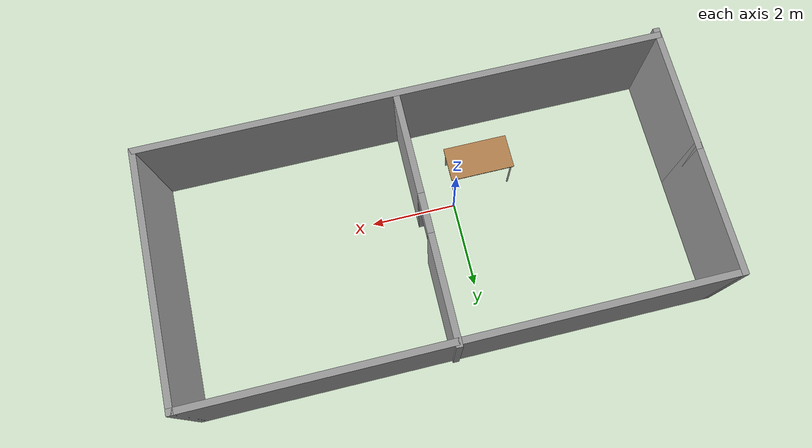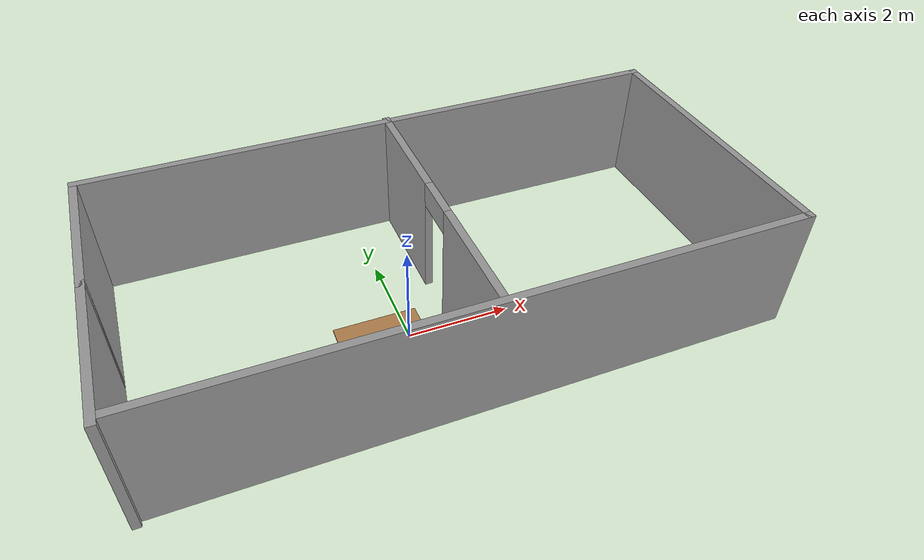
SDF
<?xml version='1.0'?>
<sdf version='1.7'>
    <world name="default">
        <model name='room1_with_table'>
            <model name='room1'>
            <pose>0.745551 0.708935 0 0 -0 0</pose>
            <link name='Wall_0'>
                <collision name='Wall_0_Collision'>
                <geometry>
                    <box>
                    <size>3 0.15 2.5</size>
                    </box>
                </geometry>
                <pose>0 0 1.25 0 -0 0</pose>
                </collision>
                <visual name='Wall_0_Visual'>
                <pose>0 0 1.25 0 -0 0</pose>
                <geometry>
                    <box>
                    <size>3 0.15 2.5</size>
                    </box>
                </geometry>
                <material>
                    <script>
                    <uri>file://media/materials/scripts/gazebo.material</uri>
                    <name>Gazebo/Grey</name>
                    </script>
                    <ambient>1 1 1 1</ambient>
                </material>
                <meta>
                    <layer>0</layer>
                </meta>
                </visual>
                <pose>-5.925 -1.4495 0 0 -0 -1.5708</pose>
            </link>
            <link name='Wall_3'>
                <collision name='Wall_3_Collision'>
                <geometry>
                    <box>
                    <size>3 0.15 2.5</size>
                    </box>
                </geometry>
                <pose>0 0 1.25 0 -0 0</pose>
                </collision>
                <visual name='Wall_3_Visual'>
                <pose>0 0 1.25 0 -0 0</pose>
                <geometry>
                    <box>
                    <size>3 0.15 2.5</size>
                    </box>
                </geometry>
                <material>
                    <script>
                    <uri>file://media/materials/scripts/gazebo.material</uri>
                    <name>Gazebo/Grey</name>
                    </script>
                    <ambient>1 1 1 1</ambient>
                </material>
                <meta>
                    <layer>0</layer>
                </meta>
                </visual>
                <pose>-5.925 1.4005 0 0 -0 1.5708</pose>
            </link>
            <link name='Wall_4'>
                <collision name='Wall_4_Collision'>
                <geometry>
                    <box>
                    <size>12 0.15 2.5</size>
                    </box>
                </geometry>
                <pose>0 0 1.25 0 -0 0</pose>
                </collision>
                <visual name='Wall_4_Visual'>
                <pose>0 0 1.25 0 -0 0</pose>
                <geometry>
                    <box>
                    <size>12 0.15 2.5</size>
                    </box>
                </geometry>
                <material>
                    <script>
                    <uri>file://media/materials/scripts/gazebo.material</uri>
                    <name>Gazebo/Grey</name>
                    </script>
                    <ambient>1 1 1 1</ambient>
                </material>
                <meta>
                    <layer>0</layer>
                </meta>
                </visual>
                <pose>-0 2.8255 0 0 -0 0</pose>
            </link>
            <link name='Wall_5'>
                <collision name='Wall_5_Collision'>
                <geometry>
                    <box>
                    <size>5.75 0.15 2.5</size>
                    </box>
                </geometry>
                <pose>0 0 1.25 0 -0 0</pose>
                </collision>
                <visual name='Wall_5_Visual'>
                <pose>0 0 1.25 0 -0 0</pose>
                <geometry>
                    <box>
                    <size>5.75 0.15 2.5</size>
                    </box>
                </geometry>
                <material>
                    <script>
                    <uri>file://media/materials/scripts/gazebo.material</uri>
                    <name>Gazebo/Grey</name>
                    </script>
                    <ambient>1 1 1 1</ambient>
                </material>
                <meta>
                    <layer>0</layer>
                </meta>
                </visual>
                <pose>5.925 0.0255 0 0 -0 -1.5708</pose>
            </link>
            <link name='Wall_6'>
                <collision name='Wall_6_Collision'>
                <geometry>
                    <box>
                    <size>12 0.15 2.5</size>
                    </box>
                </geometry>
                <pose>0 0 1.25 0 -0 0</pose>
                </collision>
                <visual name='Wall_6_Visual'>
                <pose>0 0 1.25 0 -0 0</pose>
                <geometry>
                    <box>
                    <size>12 0.15 2.5</size>
                    </box>
                </geometry>
                <material>
                    <script>
                    <uri>file://media/materials/scripts/gazebo.material</uri>
                    <name>Gazebo/Grey</name>
                    </script>
                    <ambient>1 1 1 1</ambient>
                </material>
                <meta>
                    <layer>0</layer>
                </meta>
                </visual>
                <pose>-0 -2.7745 0 0 -0 3.14159</pose>
            </link>
            <link name='Wall_9'>
                <pose>0.124261 0.0745 0 0 -0 1.5708</pose>
                <visual name='Wall_9_Visual_0'>
                <pose>-1.671 0 1.25 0 -0 0</pose>
                <geometry>
                    <box>
                    <size>2.408 0.15 2.5</size>
                    </box>
                </geometry>
                <material>
                    <script>
                    <uri>file://media/materials/scripts/gazebo.material</uri>
                    <name>Gazebo/Grey</name>
                    </script>
                    <ambient>1 1 1 1</ambient>
                </material>
                <meta>
                    <layer>0</layer>
                </meta>
                </visual>
                <collision name='Wall_9_Collision_0'>
                <geometry>
                    <box>
                    <size>2.408 0.15 2.5</size>
                    </box>
                </geometry>
                <pose>-1.671 0 1.25 0 -0 0</pose>
                </collision>
                <visual name='Wall_9_Visual_1'>
                <pose>1.654 0 1.25 0 -0 0</pose>
                <geometry>
                    <box>
                    <size>2.442 0.15 2.5</size>
                    </box>
                </geometry>
                <material>
                    <script>
                    <uri>file://media/materials/scripts/gazebo.material</uri>
                    <name>Gazebo/Grey</name>
                    </script>
                    <ambient>1 1 1 1</ambient>
                </material>
                <meta>
                    <layer>0</layer>
                </meta>
                </visual>
                <collision name='Wall_9_Collision_1'>
                <geometry>
                    <box>
                    <size>2.442 0.15 2.5</size>
                    </box>
                </geometry>
                <pose>1.654 0 1.25 0 -0 0</pose>
                </collision>
                <visual name='Wall_9_Visual_2'>
                <pose>-0.017 0 2.25 0 -0 0</pose>
                <geometry>
                    <box>
                    <size>0.9 0.15 0.5</size>
                    </box>
                </geometry>
                <material>
                    <script>
                    <uri>file://media/materials/scripts/gazebo.material</uri>
                    <name>Gazebo/Grey</name>
                    </script>
                    <ambient>1 1 1 1</ambient>
                </material>
                <meta>
                    <layer>0</layer>
                </meta>
                </visual>
                <collision name='Wall_9_Collision_2'>
                <geometry>
                    <box>
                    <size>0.9 0.15 0.5</size>
                    </box>
                </geometry>
                <pose>-0.017 0 2.25 0 -0 0</pose>
                </collision>
            </link>
            <static>1</static>
            </model>
            <model name='table'>
            <static>1</static>
            <link name='link'>
                <collision name='surface'>
                <pose>0 0 1 0 -0 0</pose>
                <geometry>
                    <box>
                    <size>1.5 0.8 0.03</size>
                    </box>
                </geometry>
                <surface>
                    <friction>
                    <ode>
                        <mu>0.6</mu>
                        <mu2>0.6</mu2>
                    </ode>
                    </friction>
                </surface>
                </collision>
                <visual name='visual1'>
                <pose>0 0 1 0 -0 0</pose>
                <geometry>
                    <box>
                    <size>1.5 0.8 0.03</size>
                    </box>
                </geometry>
                <material>
                    <script>
                    <uri>file://media/materials/scripts/gazebo.material</uri>
                    <name>Gazebo/Wood</name>
                    </script>
                </material>
                </visual>
                <collision name='front_left_leg'>
                <pose>0.68 0.38 0.5 0 -0 0</pose>
                <geometry>
                    <cylinder>
                    <radius>0.02</radius>
                    <length>1</length>
                    </cylinder>
                </geometry>
                </collision>
                <visual name='front_left_leg'>
                <pose>0.68 0.38 0.5 0 -0 0</pose>
                <geometry>
                    <cylinder>
                    <radius>0.02</radius>
                    <length>1</length>
                    </cylinder>
                </geometry>
                <material>
                    <script>
                    <uri>file://media/materials/scripts/gazebo.material</uri>
                    <name>Gazebo/Grey</name>
                    </script>
                </material>
                </visual>
                <collision name='front_right_leg'>
                <pose>0.68 -0.38 0.5 0 -0 0</pose>
                <geometry>
                    <cylinder>
                    <radius>0.02</radius>
                    <length>1</length>
                    </cylinder>
                </geometry>
                </collision>
                <visual name='front_right_leg'>
                <pose>0.68 -0.38 0.5 0 -0 0</pose>
                <geometry>
                    <cylinder>
                    <radius>0.02</radius>
                    <length>1</length>
                    </cylinder>
                </geometry>
                <material>
                    <script>
                    <uri>file://media/materials/scripts/gazebo.material</uri>
                    <name>Gazebo/Grey</name>
                    </script>
                </material>
                </visual>
                <collision name='back_right_leg'>
                <pose>-0.68 -0.38 0.5 0 -0 0</pose>
                <geometry>
                    <cylinder>
                    <radius>0.02</radius>
                    <length>1</length>
                    </cylinder>
                </geometry>
                </collision>
                <visual name='back_right_leg'>
                <pose>-0.68 -0.38 0.5 0 -0 0</pose>
                <geometry>
                    <cylinder>
                    <radius>0.02</radius>
                    <length>1</length>
                    </cylinder>
                </geometry>
                <material>
                    <script>
                    <uri>file://media/materials/scripts/gazebo.material</uri>
                    <name>Gazebo/Grey</name>
                    </script>
                </material>
                </visual>
                <collision name='back_left_leg'>
                <pose>-0.68 0.38 0.5 0 -0 0</pose>
                <geometry>
                    <cylinder>
                    <radius>0.02</radius>
                    <length>1</length>
                    </cylinder>
                </geometry>
                </collision>
                <visual name='back_left_leg'>
                <pose>-0.68 0.38 0.5 0 -0 0</pose>
                <geometry>
                    <cylinder>
                    <radius>0.02</radius>
                    <length>1</length>
                    </cylinder>
                </geometry>
                <material>
                    <script>
                    <uri>file://media/materials/scripts/gazebo.material</uri>
                    <name>Gazebo/Grey</name>
                    </script>
                </material>
                </visual>
            </link>
            <pose>-0.745557 -0.708937 0 0 -0 0</pose>
            </model>
            <static>0</static>
            <allow_auto_disable>1</allow_auto_disable>
        </model>
    </world>
</sdf>
